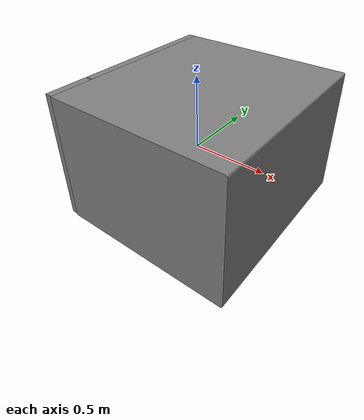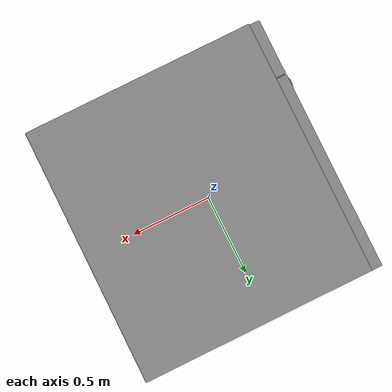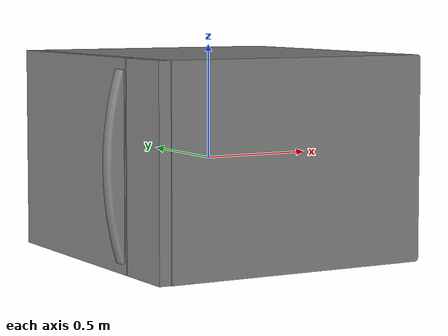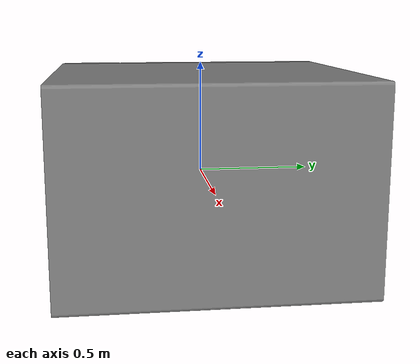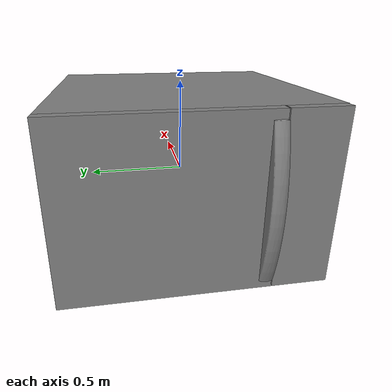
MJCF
<mujoco model="partnet_c3bb5f3c842a6c2d178e7d331e641179">
    <compiler angle="radian" />
    <size njmax="500" nconmax="100" />
    <asset>
        <mesh  name="original-1.obj.convex" file="original-1.obj.convex.stl" />
        <mesh  name="original-8.obj.convex" file="original-8.obj.convex.stl" />
        <mesh  name="original-16.obj.convex" file="original-16.obj.convex.stl" />
        <mesh  name="original-9.obj.convex" file="original-9.obj.convex.stl" />
        <mesh  name="original-10.obj.convex" file="original-10.obj.convex.stl" />
        <mesh  name="original-11.obj.convex" file="original-11.obj.convex.stl" />
        <mesh  name="original-12.obj.convex" file="original-12.obj.convex.stl" />
        <mesh  name="original-13.obj.convex" file="original-13.obj.convex.stl" />
        <mesh  name="original-14.obj.convex" file="original-14.obj.convex.stl" />
        <mesh  name="original-15.obj.convex" file="original-15.obj.convex.stl" />
        <mesh  name="original-3.obj.convex" file="original-3.obj.convex.stl" />
        <mesh  name="original-6.obj.convex" file="original-6.obj.convex.stl" />
        <mesh  name="original-18.obj.convex" file="original-18.obj.convex.stl" />
        <mesh  name="original-20.obj.convex" file="original-20.obj.convex.stl" />
        <mesh  name="original-19.obj.convex" file="original-19.obj.convex.stl" />
        <mesh  name="original-4.obj.convex" file="original-4.obj.convex.stl" />
        <mesh  name="original-2.obj.convex" file="original-2.obj.convex.stl" />
        <mesh  name="original-5.obj.convex" file="original-5.obj.convex.stl" />
    </asset>
    <worldbody>
    <body>
        <body name="object">
        <geom quat="0.5 0.5 -0.5 -0.5" type="mesh" mesh="original-4.obj.convex" contype="0" conaffinity="0" group="0" />
        <geom quat="0.5 0.5 -0.5 -0.5" type="mesh" mesh="original-2.obj.convex" contype="0" conaffinity="0" group="0" />
        <geom quat="0.5 0.5 -0.5 -0.5" type="mesh" mesh="original-5.obj.convex" contype="0" conaffinity="0" group="0" />
        <body name="link_0" pos="-0.547794 0.64304 -0.425939" quat="0.5 0.5 -0.5 -0.5">
            <inertial pos="0.518367 0.444263 0.0148138" quat="-0.000472274 0.701823 0.00050564 0.712351" mass="62.2208" diaginertia="9.46003 5.72577 3.77786" />
            <joint name="joint_0" pos="0 0 0" axis="0 -1 0" limited="true" range="0 1.5708" />
            <geom pos="0.64304 0.425939 -0.547794" type="mesh" mesh="original-1.obj.convex" group="0" />
            <geom pos="0.64304 0.425939 -0.547794" type="mesh" mesh="original-8.obj.convex" group="0" />
            <geom pos="0.64304 0.425939 -0.547794" type="mesh" mesh="original-16.obj.convex" group="0" />
            <geom pos="0.64304 0.425939 -0.547794" type="mesh" mesh="original-9.obj.convex" group="0" />
            <geom pos="0.64304 0.425939 -0.547794" type="mesh" mesh="original-10.obj.convex" group="0" />
            <geom pos="0.64304 0.425939 -0.547794" type="mesh" mesh="original-11.obj.convex" group="0" />
            <geom pos="0.64304 0.425939 -0.547794" type="mesh" mesh="original-12.obj.convex" group="0" />
            <geom pos="0.64304 0.425939 -0.547794" type="mesh" mesh="original-13.obj.convex" group="0" />
            <geom pos="0.64304 0.425939 -0.547794" type="mesh" mesh="original-14.obj.convex" group="0" />
            <geom pos="0.64304 0.425939 -0.547794" type="mesh" mesh="original-15.obj.convex" group="0" />
            <geom pos="0.64304 0.425939 -0.547794" type="mesh" mesh="original-3.obj.convex" group="0" />
            <geom pos="0.64304 0.425939 -0.547794" type="mesh" mesh="original-6.obj.convex" group="0" />
            <geom pos="0.64304 0.425939 -0.547794" type="mesh" mesh="original-18.obj.convex" group="0" />
            <geom pos="0.64304 0.425939 -0.547794" type="mesh" mesh="original-20.obj.convex" group="0" />
            <geom pos="0.64304 0.425939 -0.547794" type="mesh" mesh="original-19.obj.convex" group="0" />
        </body>
    </body>
        <site name="bottom_site" pos="0 0 -0.3" rgba="0 0 0 0" size="0.005"/>
        <site name="top_site" pos="0 0 0.3" rgba="0 0 0 0" size="0.005"/>
        <site name="horizontal_radius_site" pos="0.3 0 0" rgba="0 0 0 0" size="0.1"/>
    </body>
    </worldbody>
</mujoco>
